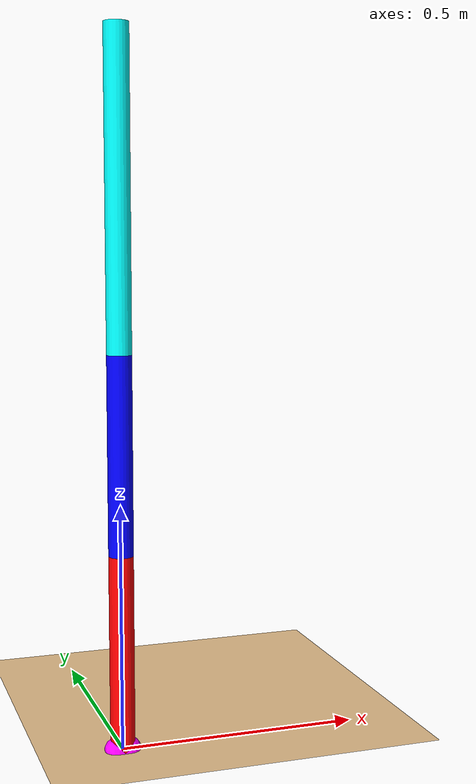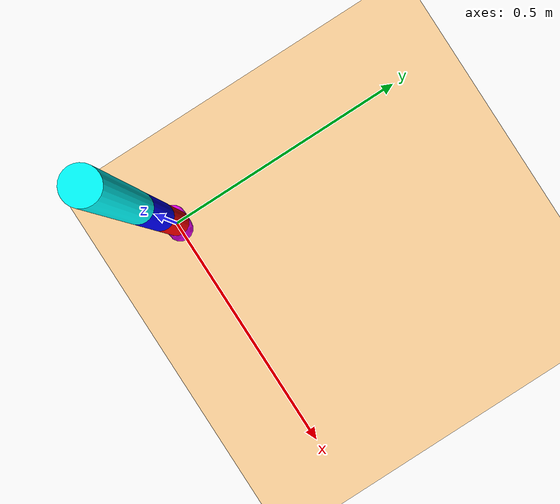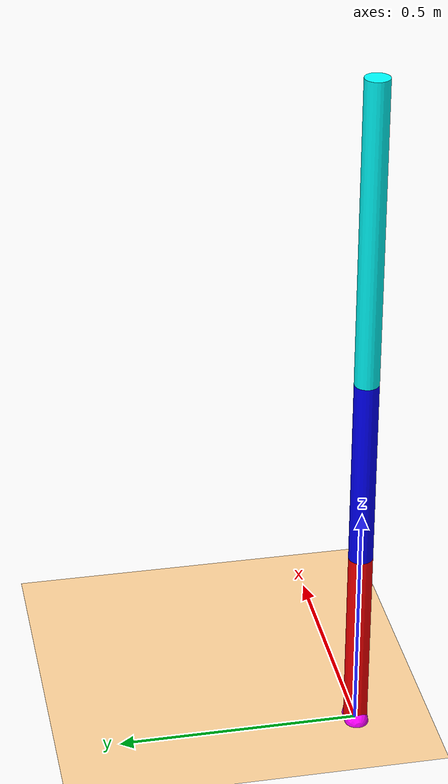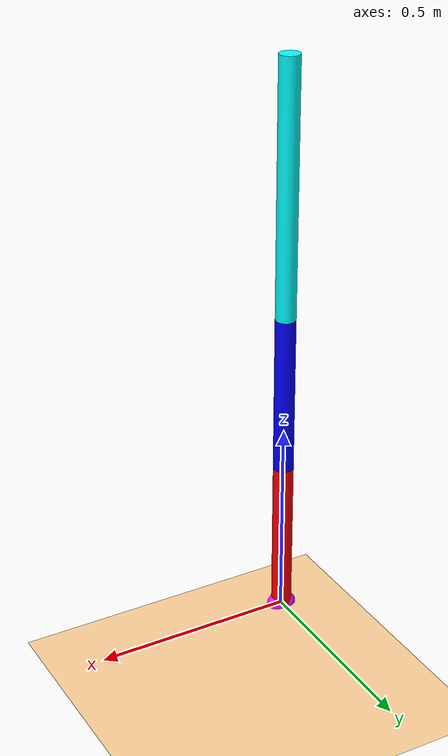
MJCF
<mujoco model="five link walker">
	<compiler 	angle="radian" eulerseq="XYZ" balanceinertia="true"/>

	<worldbody>
	<!-- set up a light pointing down on the robot -->
		<light directional="true" pos="-0.5 0.5 3" dir="0 0 -1" />
		<!-- add a floor so we don't stare off into the abyss -->
		<geom name="floor" pos="0 0 0" size="1 1 1" type="plane" rgba="1 0.83 0.61 0.5"  contype="1" conaffinity="1"/>
		<!--start building model-->

		<body name="base" pos="0 0 0.8">
			<!-- uncomment to get planar joint - limit motion to just sagittal plane -->
			<joint name="base_x" type="slide" axis="1 0 0" pos="0 0 0"/>
			<joint name="base_z" type="slide" axis="0 0 1" pos="0 0 0"/>
			<joint name="rot_y" type="hinge" axis="0 1 0" pos="0 0 0"/>
			<geom name="torso" type="cylinder" size="0.025 0.315" pos="0 0 0.315" euler="0 0 0" rgba="0 255 61 0.9"  contype="5" conaffinity="3"  />
			<inertial pos="0 0 0.24" mass="12" diaginertia="0 1.33 0"/>
			<!-- uncomment to get free joint represented by quartenions -->

			<!-- nest each child piece inside the parent body tags -->
			<body name="right_thigh" pos="0 0 0">

				<joint name="q1_right" axis="0 1 0" pos="0 0 0"/>
				<geom name="right_thigh" type="cylinder" size="0.025 0.2" pos="0 0 -0.2" euler="0 0 0" rgba="0 0 1 1"  contype="4" conaffinity="1"/>

				<inertial pos="0 0 -0.11" mass="6.8" diaginertia="0 0.47 0"/>
				<body name="right_shin" pos="0 0 -0.4">

					<joint name="q2_right" axis="0 1 0" pos="0 0 0"/>
					<geom name="right_shin" type="cylinder" size="0.025 0.2" pos="0 0 -0.2" euler="0 0 0" rgba="1 0 0 1" contype="4" conaffinity="1" />
					<inertial pos="0 0 -0.24" mass="6.8" diaginertia="0 0.2 0"/>

					 <geom name="right_foot" type="capsule" size="0.025 0.0125" pos="0 0 -0.4" euler="0 1.57 0" rgba="142 0 71 1" contype="4" conaffinity="1"/>

				</body>
			</body>

			<body name="left_thigh" pos="0 0 0">

				<joint name="q1_left" axis="0 1 0" pos="0 0 0"/>
				<geom name="left_thigh" type="cylinder" size="0.025 0.2" pos="0 0 -0.2" euler="0 0 0" rgba="0 0 1 1" contype="4" conaffinity="1"/>

				<inertial pos="0 0 -0.11" mass="6.8" diaginertia="0 0.47 0"/>
				<body name="left_shin" pos="0 0 -0.4">

					<joint name="q2_left" axis="0 1 0" pos="0 0 0"/>
					<geom name="left_shin" type="cylinder" size="0.025 0.2" pos="0 0 -0.2" euler="0 0 0" rgba="1 0 0 1" contype="4" conaffinity="1"/>
					<inertial pos="0 0 -0.24" mass="6.8" diaginertia="0 0.2 0"/>

					<geom name="left_foot" type="capsule" size="0.025 0.0125" pos="0 0 -0.4" euler="0 1.57 0" rgba="142 0 71 1" contype="4" conaffinity="1" />

				</body>
			</body>

		</body>
	</worldbody>

<!-- attach actuators to joints -->
    <actuator>
        <motor name="q1_right_motor" joint="q1_right" gear="50" />
        <motor name="q2_right_motor" joint="q2_right" gear="50"/>
	<motor name="q1_left_motor" joint="q1_left" gear="50" />
        <motor name="q2_left_motor" joint="q2_left" gear="50"/>
    </actuator>

</mujoco>
